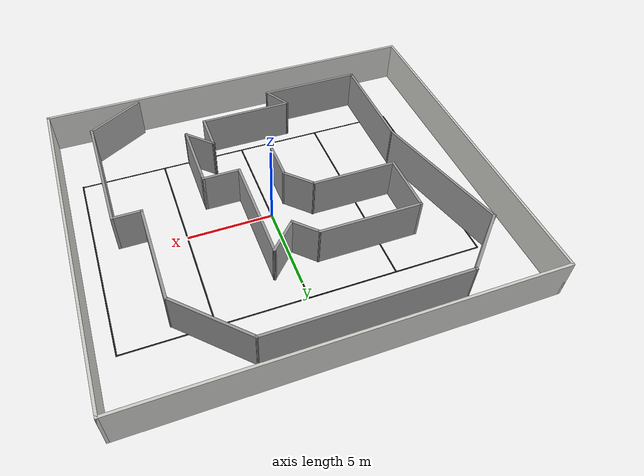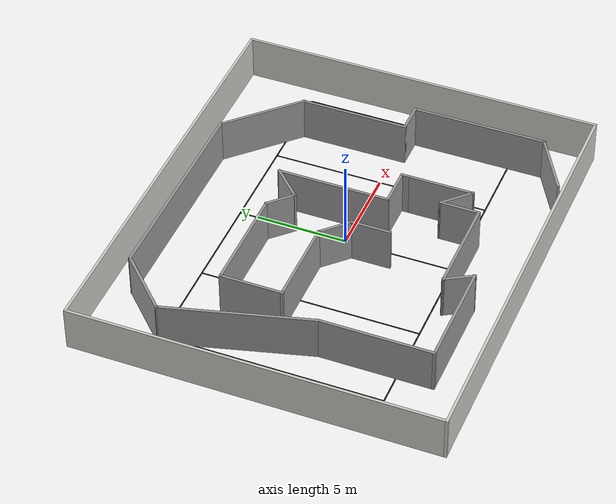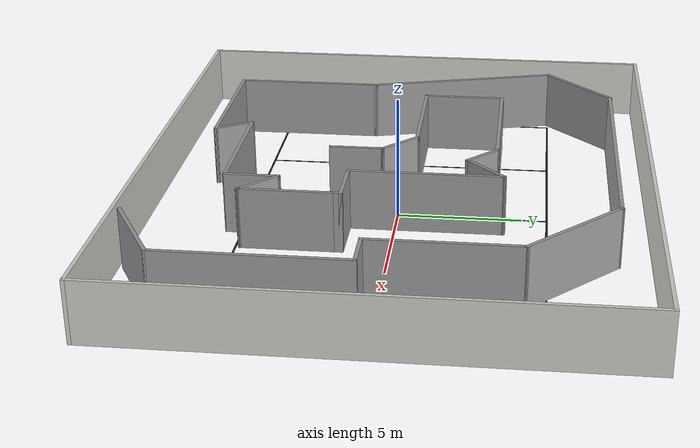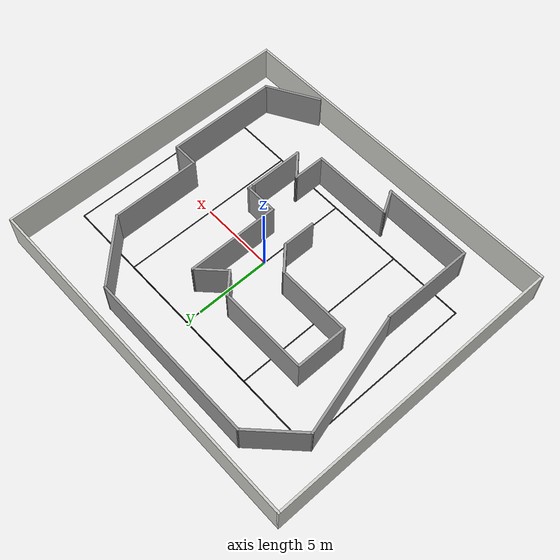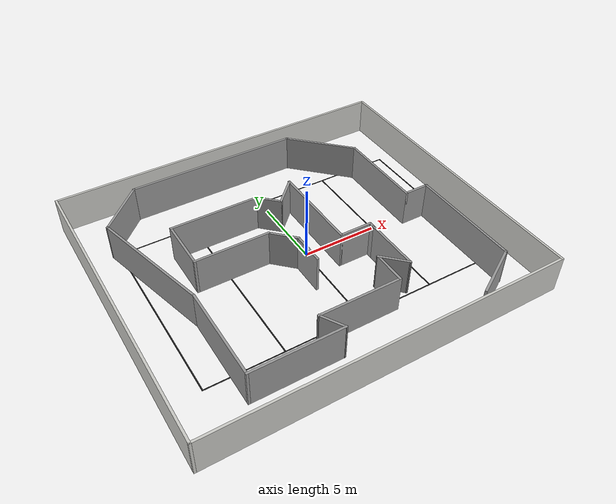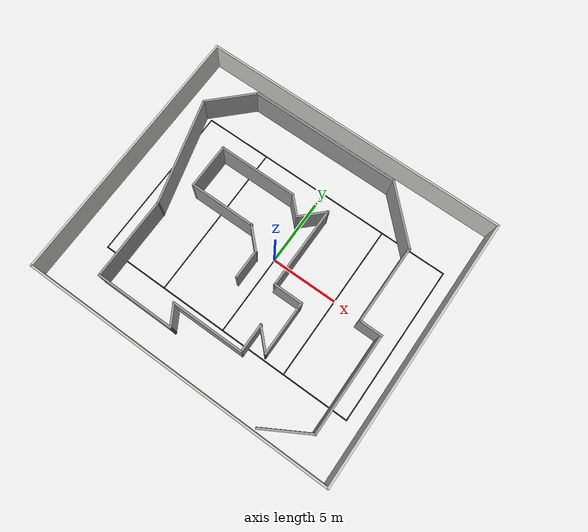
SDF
<sdf version="1.6">
 <world name="default">
  <light name="sun" type="directional">
   <pose>0 0 10 0 -0 0</pose>
   <diffuse>0.8 0.8 0.8 1</diffuse>
   <specular>0.1 0.1 0.1 1</specular>
   <attenuation>
    <range>1000</range>
    <constant>0.9</constant>
    <linear>0.01</linear>
    <quadratic>0.001</quadratic>
   </attenuation>
   <direction>-0.5 0.5 -1</direction>
  </light>
  <gravity>0 0 -9.8</gravity>
  <magnetic_field>6e-06 2.3e-05 -4.2e-05</magnetic_field>
  <atmosphere type="adiabatic"/>
  <physics name="default_physics" default="0" type="ode">
   <max_step_size>0.001</max_step_size>
   <real_time_factor>1</real_time_factor>
   <real_time_update_rate>1000</real_time_update_rate>
  </physics>
  <scene><ambient>0.4 0.4 0.4 1</ambient><background>0.7 0.7 0.7 1</background><shadows>1</shadows></scene>
  <spherical_coordinates>
   <surface_model>EARTH_WGS84</surface_model>
   <latitude_deg>0</latitude_deg>
   <longitude_deg>0</longitude_deg>
   <elevation>0</elevation>
   <heading_deg>0</heading_deg>
  </spherical_coordinates>
  <model name="walls">
   <pose>-0.635 -0.01 0 0 -0 0</pose>
   <link name="Wall_110">
    <collision name="Wall_110_Collision">
     <geometry><box><size>23.5 0.15 2.5</size></box></geometry>
     <pose>0 0 1.25 0 -0 0</pose>
    </collision>
    <visual name="Wall_110_Visual">
     <pose>0 0 1.25 0 -0 0</pose>
     <geometry><box><size>23.5 0.15 2.5</size></box></geometry>
     <material>
      <script><uri>file://media/materials/scripts/gazebo.material</uri><name>Gazebo/CeilingTiled</name></script>
      <ambient>0.760784 0.662745 0.627451 1</ambient>
     </material>
     <meta><layer>0</layer></meta>
    </visual>
    <pose>0 10.05 0 0 -0 0</pose>
   </link>
   <link name="Wall_120">
    <collision name="Wall_120_Collision">
     <geometry><box><size>20.25 0.15 2.5</size></box></geometry>
     <pose>0 0 1.25 0 -0 0</pose>
    </collision>
    <visual name="Wall_120_Visual">
     <pose>0 0 1.25 0 -0 0</pose>
     <geometry><box><size>20.25 0.15 2.5</size></box></geometry>
     <material>
      <script><uri>file://media/materials/scripts/gazebo.material</uri><name>Gazebo/CeilingTiled</name></script>
      <ambient>0.760784 0.662745 0.627451 1</ambient>
     </material>
     <meta><layer>0</layer></meta>
    </visual>
    <pose>11.675 0 0 0 -0 -1.5708</pose>
   </link>
   <link name="Wall_130">
    <collision name="Wall_130_Collision">
     <geometry><box><size>23.5 0.15 2.5</size></box></geometry>
     <pose>0 0 1.25 0 -0 0</pose>
    </collision>
    <visual name="Wall_130_Visual">
     <pose>0 0 1.25 0 -0 0</pose>
     <geometry><box><size>23.5 0.15 2.5</size></box></geometry>
     <material>
      <script><uri>file://media/materials/scripts/gazebo.material</uri><name>Gazebo/CeilingTiled</name></script>
      <ambient>0.760784 0.662745 0.627451 1</ambient>
     </material>
     <meta><layer>0</layer></meta>
    </visual>
    <pose>0 -10.05 0 0 -0 3.14159</pose>
   </link>
   <link name="Wall_140">
    <collision name="Wall_140_Collision">
     <geometry><box><size>20.25 0.15 2.5</size></box></geometry>
     <pose>0 0 1.25 0 -0 0</pose>
    </collision>
    <visual name="Wall_140_Visual">
     <pose>0 0 1.25 0 -0 0</pose>
     <geometry><box><size>20.25 0.15 2.5</size></box></geometry>
     <material>
      <script><uri>file://media/materials/scripts/gazebo.material</uri><name>Gazebo/CeilingTiled</name></script>
      <ambient>0.760784 0.662745 0.627451 1</ambient>
     </material>
     <meta><layer>0</layer></meta>
    </visual>
    <pose>-11.675 0 0 0 -0 1.5708</pose>
   </link>
   <static>1</static>
  </model>
  <model name="yol line_0">
   <static>1</static>
   <link name="link_ground">
    <collision name="collision">
     <geometry><plane><normal>0 0 1</normal><size>20.043 0.08</size></plane></geometry>
     <surface><friction><ode><mu>100</mu><mu2>50</mu2></ode></friction></surface>
    </collision>
    <visual name="visual_ground">
     <cast_shadows>0</cast_shadows>
     <geometry><plane><normal>0 0 1</normal><size>20.043 0.08</size></plane></geometry>
     <material>
      <script><uri>file://media/materials/scripts/gazebo.material</uri><name>Gazebo/Black</name></script>
     </material>
    </visual>
   </link>
   <pose>-0.0185 -6.003 0 0 -0 3.14159</pose>
  </model>
  <model name="yol line_10">
   <static>1</static>
   <link name="link_ground">
    <collision name="collision">
     <geometry><plane><normal>0 0 1</normal><size>12.084 0.08</size></plane></geometry>
     <surface><friction><ode><mu>100</mu><mu2>50</mu2></ode></friction></surface>
    </collision>
    <visual name="visual_ground">
     <cast_shadows>0</cast_shadows>
     <geometry><plane><normal>0 0 1</normal><size>12.084 0.08</size></plane></geometry>
     <material>
      <script><uri>file://media/materials/scripts/gazebo.material</uri><name>Gazebo/Black</name></script>
     </material>
    </visual>
   </link>
   <pose>10 0.001 0 0 -0 -1.5708</pose>
  </model>
  <model name="yol line_2">
   <static>1</static>
   <link name="link_ground">
    <collision name="collision">
     <geometry><plane><normal>0 0 1</normal><size>12.005 0.08</size></plane></geometry>
     <surface><friction><ode><mu>100</mu><mu2>50</mu2></ode></friction></surface>
    </collision>
    <visual name="visual_ground">
     <cast_shadows>0</cast_shadows>
     <geometry><plane><normal>0 0 1</normal><size>12.005 0.08</size></plane></geometry>
     <material>
      <script><uri>file://media/materials/scripts/gazebo.material</uri><name>Gazebo/Black</name></script>
     </material>
    </visual>
   </link>
   <pose>0 -0.0015 0 0 -0 -1.5708</pose>
  </model>
  <model name="yol line_12">
   <static>1</static>
   <link name="link_ground">
    <collision name="collision">
     <geometry><plane><normal>0 0 1</normal><size>12.005 0.08</size></plane></geometry>
     <surface><friction><ode><mu>100</mu><mu2>50</mu2></ode></friction></surface>
    </collision>
    <visual name="visual_ground">
     <cast_shadows>0</cast_shadows>
     <geometry><plane><normal>0 0 1</normal><size>12.005 0.08</size></plane></geometry>
     <material>
      <script><uri>file://media/materials/scripts/gazebo.material</uri><name>Gazebo/Black</name></script>
     </material>
    </visual>
   </link>
   <pose>5 -0.0015 0 0 -0 -1.5708</pose>
  </model>
  <model name="yol line_14">
   <static>1</static>
   <link name="link_ground">
    <collision name="collision">
     <geometry><plane><normal>0 0 1</normal><size>12.005 0.08</size></plane></geometry>
     <surface><friction><ode><mu>100</mu><mu2>50</mu2></ode></friction></surface>
    </collision>
    <visual name="visual_ground">
     <cast_shadows>0</cast_shadows>
     <geometry><plane><normal>0 0 1</normal><size>12.005 0.08</size></plane></geometry>
     <material>
      <script><uri>file://media/materials/scripts/gazebo.material</uri><name>Gazebo/Black</name></script>
     </material>
    </visual>
   </link>
   <pose>-5 -0.0015 0 0 -0 -1.5708</pose>
  </model>
  <model name="yol line_16">
   <static>1</static>
   <link name="link_ground">
    <collision name="collision">
     <geometry><plane><normal>0 0 1</normal><size>12.005 0.08</size></plane></geometry>
     <surface><friction><ode><mu>100</mu><mu2>50</mu2></ode></friction></surface>
    </collision>
    <visual name="visual_ground">
     <cast_shadows>0</cast_shadows>
     <geometry><plane><normal>0 0 1</normal><size>12.005 0.08</size></plane></geometry>
     <material>
      <script><uri>file://media/materials/scripts/gazebo.material</uri><name>Gazebo/Black</name></script>
     </material>
    </visual>
   </link>
   <pose>-0.038 6.003 0 0 -0 0</pose>
  </model>
  <model name="yol line_18">
   <static>1</static>
   <link name="link_ground">
    <collision name="collision">
     <geometry><plane><normal>0 0 1</normal><size>20.002 0.08</size></plane></geometry>
     <surface><friction><ode><mu>100</mu><mu2>50</mu2></ode></friction></surface>
    </collision>
    <visual name="visual_ground">
     <cast_shadows>0</cast_shadows>
     <geometry><plane><normal>0 0 1</normal><size>20.002 0.08</size></plane></geometry>
     <material>
      <script><uri>file://media/materials/scripts/gazebo.material</uri><name>Gazebo/Black</name></script>
     </material>
    </visual>
   </link>
   <pose>-0.038 6.003 0 0 -0 0</pose>
  </model>
  <model name="yol line_8">
   <static>1</static>
   <link name="link_ground">
    <collision name="collision">
     <geometry><plane><normal>0 0 1</normal><size>12.0056 0.08</size></plane></geometry>
     <surface><friction><ode><mu>100</mu><mu2>50</mu2></ode></friction></surface>
    </collision>
    <visual name="visual_ground">
     <cast_shadows>0</cast_shadows>
     <geometry><plane><normal>0 0 1</normal><size>12.0056 0.08</size></plane></geometry>
     <material>
      <script><uri>file://media/materials/scripts/gazebo.material</uri><name>Gazebo/Black</name></script>
     </material>
    </visual>
   </link>
   <pose>-10 -0.0015 0 0 -0 -1.5708</pose>
  </model>
  <model name="trial">
   <pose>-0.857326 -0.532359 0 0 -0 0</pose>
   <link name="Wall_0">
    <collision name="Wall_0_Collision">
     <geometry><box><size>2.25 0.15 2.5</size></box></geometry>
     <pose>0 0 1.25 0 -0 0</pose>
    </collision>
    <visual name="Wall_0_Visual">
     <pose>0 0 1.25 0 -0 0</pose>
     <geometry><box><size>2.25 0.15 2.5</size></box></geometry>
     <material>
      <script><uri>file://media/materials/scripts/gazebo.material</uri><name>Gazebo/Grey</name></script>
      <ambient>1 1 1 1</ambient>
     </material>
     <meta><layer>0</layer></meta>
    </visual>
    <pose>-0.152674 -1.26764 0 0 -0 1.5708</pose>
   </link>
   <link name="Wall_1">
    <collision name="Wall_1_Collision">
     <geometry><box><size>2 0.15 2.5</size></box></geometry>
     <pose>0 0 1.25 0 -0 0</pose>
    </collision>
    <visual name="Wall_1_Visual">
     <pose>0 0 1.25 0 -0 0</pose>
     <geometry><box><size>2 0.15 2.5</size></box></geometry>
     <material>
      <script><uri>file://media/materials/scripts/gazebo.material</uri><name>Gazebo/Grey</name></script>
      <ambient>1 1 1 1</ambient>
     </material>
     <meta><layer>0</layer></meta>
    </visual>
    <pose>-0.806748 0.436432 0 0 -0 2.35619</pose>
   </link>
   <link name="Wall_10">
    <collision name="Wall_10_Collision">
     <geometry><box><size>3.75 0.15 2.5</size></box></geometry>
     <pose>0 0 1.25 0 -0 0</pose>
    </collision>
    <visual name="Wall_10_Visual">
     <pose>0 0 1.25 0 -0 0</pose>
     <geometry><box><size>3.75 0.15 2.5</size></box></geometry>
     <material>
      <script><uri>file://media/materials/scripts/gazebo.material</uri><name>Gazebo/Grey</name></script>
      <ambient>1 1 1 1</ambient>
     </material>
     <meta><layer>0</layer></meta>
    </visual>
    <pose>4.25547 -3.45594 0 0 -0 -1.5708</pose>
   </link>
   <link name="Wall_11">
    <collision name="Wall_11_Collision">
     <geometry><box><size>2 0.15 2.5</size></box></geometry>
     <pose>0 0 1.25 0 -0 0</pose>
    </collision>
    <visual name="Wall_11_Visual">
     <pose>0 0 1.25 0 -0 0</pose>
     <geometry><box><size>2 0.15 2.5</size></box></geometry>
     <material>
      <script><uri>file://media/materials/scripts/gazebo.material</uri><name>Gazebo/Grey</name></script>
      <ambient>1 1 1 1</ambient>
     </material>
     <meta><layer>0</layer></meta>
    </visual>
    <pose>3.6014 -4.60187 0 0 -0 2.35619</pose>
   </link>
   <link name="Wall_12">
    <collision name="Wall_12_Collision">
     <geometry><box><size>2.25 0.15 2.5</size></box></geometry>
     <pose>0 0 1.25 0 -0 0</pose>
    </collision>
    <visual name="Wall_12_Visual">
     <pose>0 0 1.25 0 -0 0</pose>
     <geometry><box><size>2.25 0.15 2.5</size></box></geometry>
     <material>
      <script><uri>file://media/materials/scripts/gazebo.material</uri><name>Gazebo/Grey</name></script>
      <ambient>1 1 1 1</ambient>
     </material>
     <meta><layer>0</layer></meta>
    </visual>
    <pose>2.94733 -4.99779 0 0 -0 -1.5708</pose>
   </link>
   <link name="Wall_13">
    <collision name="Wall_13_Collision">
     <geometry><box><size>5.5 0.15 2.5</size></box></geometry>
     <pose>0 0 1.25 0 -0 0</pose>
    </collision>
    <visual name="Wall_13_Visual">
     <pose>0 0 1.25 0 -0 0</pose>
     <geometry><box><size>5.5 0.15 2.5</size></box></geometry>
     <material>
      <script><uri>file://media/materials/scripts/gazebo.material</uri><name>Gazebo/Grey</name></script>
      <ambient>1 1 1 1</ambient>
     </material>
     <meta><layer>0</layer></meta>
    </visual>
    <pose>0.272326 -6.04779 0 0 -0 3.14159</pose>
   </link>
   <link name="Wall_14">
    <collision name="Wall_14_Collision">
     <geometry><box><size>1.75 0.15 2.5</size></box></geometry>
     <pose>0 0 1.25 0 -0 0</pose>
    </collision>
    <visual name="Wall_14_Visual">
     <pose>0 0 1.25 0 -0 0</pose>
     <geometry><box><size>1.75 0.15 2.5</size></box></geometry>
     <material>
      <script><uri>file://media/materials/scripts/gazebo.material</uri><name>Gazebo/Grey</name></script>
      <ambient>1 1 1 1</ambient>
     </material>
     <meta><layer>0</layer></meta>
    </visual>
    <pose>-2.00267 -6.74061 0 0 -0 -1.0472</pose>
   </link>
   <link name="Wall_15">
    <collision name="Wall_15_Collision">
     <geometry><box><size>6 0.15 2.5</size></box></geometry>
     <pose>0 0 1.25 0 -0 0</pose>
    </collision>
    <visual name="Wall_15_Visual">
     <pose>0 0 1.25 0 -0 0</pose>
     <geometry><box><size>6 0.15 2.5</size></box></geometry>
     <material>
      <script><uri>file://media/materials/scripts/gazebo.material</uri><name>Gazebo/Grey</name></script>
      <ambient>1 1 1 1</ambient>
     </material>
     <meta><layer>0</layer></meta>
    </visual>
    <pose>-4.52767 -7.43343 0 0 -0 3.14159</pose>
   </link>
   <link name="Wall_16">
    <collision name="Wall_16_Collision">
     <geometry><box><size>6.25 0.15 2.5</size></box></geometry>
     <pose>0 0 1.25 0 -0 0</pose>
    </collision>
    <visual name="Wall_16_Visual">
     <pose>0 0 1.25 0 -0 0</pose>
     <geometry><box><size>6.25 0.15 2.5</size></box></geometry>
     <material>
      <script><uri>file://media/materials/scripts/gazebo.material</uri><name>Gazebo/Grey</name></script>
      <ambient>1 1 1 1</ambient>
     </material>
     <meta><layer>0</layer></meta>
    </visual>
    <pose>-7.45267 -4.38343 0 0 -0 1.5708</pose>
   </link>
   <link name="Wall_17">
    <collision name="Wall_17_Collision">
     <geometry><box><size>8.25 0.15 2.5</size></box></geometry>
     <pose>0 0 1.25 0 -0 0</pose>
    </collision>
    <visual name="Wall_17_Visual">
     <pose>0 0 1.25 0 -0 0</pose>
     <geometry><box><size>8.25 0.15 2.5</size></box></geometry>
     <material>
      <script><uri>file://media/materials/scripts/gazebo.material</uri><name>Gazebo/Grey</name></script>
      <ambient>1 1 1 1</ambient>
     </material>
     <meta><layer>0</layer></meta>
    </visual>
    <pose>-8.50089 2.57857 0 0 -0 1.8326</pose>
   </link>
   <link name="Wall_18">
    <collision name="Wall_18_Collision">
     <geometry><box><size>4 0.15 2.5</size></box></geometry>
     <pose>0 0 1.25 0 -0 0</pose>
    </collision>
    <visual name="Wall_18_Visual">
     <pose>0 0 1.25 0 -0 0</pose>
     <geometry><box><size>4 0.15 2.5</size></box></geometry>
     <material>
      <script><uri>file://media/materials/scripts/gazebo.material</uri><name>Gazebo/Grey</name></script>
      <ambient>1 1 1 1</ambient>
     </material>
     <meta><layer>0</layer></meta>
    </visual>
    <pose>-8.18793 7.85175 0 0 -0 0.785398</pose>
   </link>
   <link name="Wall_19">
    <collision name="Wall_19_Collision">
     <geometry><box><size>11.5 0.15 2.5</size></box></geometry>
     <pose>0 0 1.25 0 -0 0</pose>
    </collision>
    <visual name="Wall_19_Visual">
     <pose>0 0 1.25 0 -0 0</pose>
     <geometry><box><size>11.5 0.15 2.5</size></box></geometry>
     <material>
      <script><uri>file://media/materials/scripts/gazebo.material</uri><name>Gazebo/Grey</name></script>
      <ambient>1 1 1 1</ambient>
     </material>
     <meta><layer>0</layer></meta>
    </visual>
    <pose>-1.15175 9.21293 0 0 -0 0</pose>
   </link>
   <link name="Wall_2">
    <collision name="Wall_2_Collision">
     <geometry><box><size>5 0.15 2.5</size></box></geometry>
     <pose>0 0 1.25 0 -0 0</pose>
    </collision>
    <visual name="Wall_2_Visual">
     <pose>0 0 1.25 0 -0 0</pose>
     <geometry><box><size>5 0.15 2.5</size></box></geometry>
     <material>
      <script><uri>file://media/materials/scripts/gazebo.material</uri><name>Gazebo/Grey</name></script>
      <ambient>1 1 1 1</ambient>
     </material>
     <meta><layer>0</layer></meta>
    </visual>
    <pose>-3.88582 1.09051 0 0 -0 3.14159</pose>
   </link>
   <link name="Wall_20">
    <collision name="Wall_20_Collision">
     <geometry><box><size>5 0.15 2.5</size></box></geometry>
     <pose>0 0 1.25 0 -0 0</pose>
    </collision>
    <visual name="Wall_20_Visual">
     <pose>0 0 1.25 0 -0 0</pose>
     <geometry><box><size>5 0.15 2.5</size></box></geometry>
     <material>
      <script><uri>file://media/materials/scripts/gazebo.material</uri><name>Gazebo/Grey</name></script>
      <ambient>1 1 1 1</ambient>
     </material>
     <meta><layer>0</layer></meta>
    </visual>
    <pose>6.23799 7.49819 0 0 -0 -0.785398</pose>
   </link>
   <link name="Wall_21">
    <collision name="Wall_21_Collision">
     <geometry><box><size>6 0.15 2.5</size></box></geometry>
     <pose>0 0 1.25 0 -0 0</pose>
    </collision>
    <visual name="Wall_21_Visual">
     <pose>0 0 1.25 0 -0 0</pose>
     <geometry><box><size>6 0.15 2.5</size></box></geometry>
     <material>
      <script><uri>file://media/materials/scripts/gazebo.material</uri><name>Gazebo/Grey</name></script>
      <ambient>1 1 1 1</ambient>
     </material>
     <meta><layer>0</layer></meta>
    </visual>
    <pose>7.95272 2.85846 0 0 -0 -1.5708</pose>
   </link>
   <link name="Wall_22">
    <collision name="Wall_22_Collision">
     <geometry><box><size>1.75 0.15 2.5</size></box></geometry>
     <pose>0 0 1.25 0 -0 0</pose>
    </collision>
    <visual name="Wall_22_Visual">
     <pose>0 0 1.25 0 -0 0</pose>
     <geometry><box><size>1.75 0.15 2.5</size></box></geometry>
     <material>
      <script><uri>file://media/materials/scripts/gazebo.material</uri><name>Gazebo/Grey</name></script>
      <ambient>1 1 1 1</ambient>
     </material>
     <meta><layer>0</layer></meta>
    </visual>
    <pose>8.75272 -0.066541 0 0 -0 0</pose>
   </link>
   <link name="Wall_23">
    <collision name="Wall_23_Collision">
     <geometry><box><size>7.5 0.15 2.5</size></box></geometry>
     <pose>0 0 1.25 0 -0 0</pose>
    </collision>
    <visual name="Wall_23_Visual">
     <pose>0 0 1.25 0 -0 0</pose>
     <geometry><box><size>7.5 0.15 2.5</size></box></geometry>
     <material>
      <script><uri>file://media/materials/scripts/gazebo.material</uri><name>Gazebo/Grey</name></script>
      <ambient>1 1 1 1</ambient>
     </material>
     <meta><layer>0</layer></meta>
    </visual>
    <pose>9.55272 -3.74154 0 0 -0 -1.5708</pose>
   </link>
   <link name="Wall_24">
    <collision name="Wall_24_Collision">
     <geometry><box><size>3.75 0.15 2.5</size></box></geometry>
     <pose>0 0 1.25 0 -0 0</pose>
    </collision>
    <visual name="Wall_24_Visual">
     <pose>0 0 1.25 0 -0 0</pose>
     <geometry><box><size>3.75 0.15 2.5</size></box></geometry>
     <material>
      <script><uri>file://media/materials/scripts/gazebo.material</uri><name>Gazebo/Grey</name></script>
      <ambient>1 1 1 1</ambient>
     </material>
     <meta><layer>0</layer></meta>
    </visual>
    <pose>7.99388 -8.31654 0 0 -0 -2.61799</pose>
   </link>
   <link name="Wall_3">
    <collision name="Wall_3_Collision">
     <geometry><box><size>3.5 0.15 2.5</size></box></geometry>
     <pose>0 0 1.25 0 -0 0</pose>
    </collision>
    <visual name="Wall_3_Visual">
     <pose>0 0 1.25 0 -0 0</pose>
     <geometry><box><size>3.5 0.15 2.5</size></box></geometry>
     <material>
      <script><uri>file://media/materials/scripts/gazebo.material</uri><name>Gazebo/Grey</name></script>
      <ambient>1 1 1 1</ambient>
     </material>
     <meta><layer>0</layer></meta>
    </visual>
    <pose>-6.31082 2.76551 0 0 -0 1.5708</pose>
   </link>
   <link name="Wall_4">
    <collision name="Wall_4_Collision">
     <geometry><box><size>6 0.15 2.5</size></box></geometry>
     <pose>0 0 1.25 0 -0 0</pose>
    </collision>
    <visual name="Wall_4_Visual">
     <pose>0 0 1.25 0 -0 0</pose>
     <geometry><box><size>6 0.15 2.5</size></box></geometry>
     <material>
      <script><uri>file://media/materials/scripts/gazebo.material</uri><name>Gazebo/Grey</name></script>
      <ambient>1 1 1 1</ambient>
     </material>
     <meta><layer>0</layer></meta>
    </visual>
    <pose>-3.38582 4.44051 0 0 -0 0</pose>
   </link>
   <link name="Wall_5">
    <collision name="Wall_5_Collision">
     <geometry><box><size>1.75 0.15 2.5</size></box></geometry>
     <pose>0 0 1.25 0 -0 0</pose>
    </collision>
    <visual name="Wall_5_Visual">
     <pose>0 0 1.25 0 -0 0</pose>
     <geometry><box><size>1.75 0.15 2.5</size></box></geometry>
     <material>
      <script><uri>file://media/materials/scripts/gazebo.material</uri><name>Gazebo/Grey</name></script>
      <ambient>1 1 1 1</ambient>
     </material>
     <meta><layer>0</layer></meta>
    </visual>
    <pose>0.104864 3.87482 0 0 -0 -0.785398</pose>
   </link>
   <link name="Wall_6">
    <collision name="Wall_6_Collision">
     <geometry><box><size>2.25 0.15 2.5</size></box></geometry>
     <pose>0 0 1.25 0 -0 0</pose>
    </collision>
    <visual name="Wall_6_Visual">
     <pose>0 0 1.25 0 -0 0</pose>
     <geometry><box><size>2.25 0.15 2.5</size></box></geometry>
     <material>
      <script><uri>file://media/materials/scripts/gazebo.material</uri><name>Gazebo/Grey</name></script>
      <ambient>1 1 1 1</ambient>
     </material>
     <meta><layer>0</layer></meta>
    </visual>
    <pose>1.41301 4.0516 0 0 -0 0.785398</pose>
   </link>
   <link name="Wall_7">
    <collision name="Wall_7_Collision">
     <geometry><box><size>6.25 0.15 2.5</size></box></geometry>
     <pose>0 0 1.25 0 -0 0</pose>
    </collision>
    <visual name="Wall_7_Visual">
     <pose>0 0 1.25 0 -0 0</pose>
     <geometry><box><size>6.25 0.15 2.5</size></box></geometry>
     <material>
      <script><uri>file://media/materials/scripts/gazebo.material</uri><name>Gazebo/Grey</name></script>
      <ambient>1 1 1 1</ambient>
     </material>
     <meta><layer>0</layer></meta>
    </visual>
    <pose>2.15547 1.74406 0 0 -0 -1.5708</pose>
   </link>
   <link name="Wall_8">
    <collision name="Wall_8_Collision">
     <geometry><box><size>2.25 0.15 2.5</size></box></geometry>
     <pose>0 0 1.25 0 -0 0</pose>
    </collision>
    <visual name="Wall_8_Visual">
     <pose>0 0 1.25 0 -0 0</pose>
     <geometry><box><size>2.25 0.15 2.5</size></box></geometry>
     <material>
      <script><uri>file://media/materials/scripts/gazebo.material</uri><name>Gazebo/Grey</name></script>
      <ambient>1 1 1 1</ambient>
     </material>
     <meta><layer>0</layer></meta>
    </visual>
    <pose>3.20547 -1.30594 0 0 -0 0</pose>
   </link>
   <link name="Wall_9">
    <collision name="Wall_9_Collision">
     <geometry><box><size>0.5 0.15 2.5</size></box></geometry>
     <pose>0 0 1.25 0 -0 0</pose>
    </collision>
    <visual name="Wall_9_Visual">
     <pose>0 0 1.25 0 -0 0</pose>
     <geometry><box><size>0.5 0.15 2.5</size></box></geometry>
     <material>
      <script><uri>file://media/materials/scripts/gazebo.material</uri><name>Gazebo/Grey</name></script>
      <ambient>1 1 1 1</ambient>
     </material>
     <meta><layer>0</layer></meta>
    </visual>
    <pose>4.25547 -1.48094 0 0 -0 -1.5708</pose>
   </link>
   <static>1</static>
  </model>
 </world>
</sdf>
